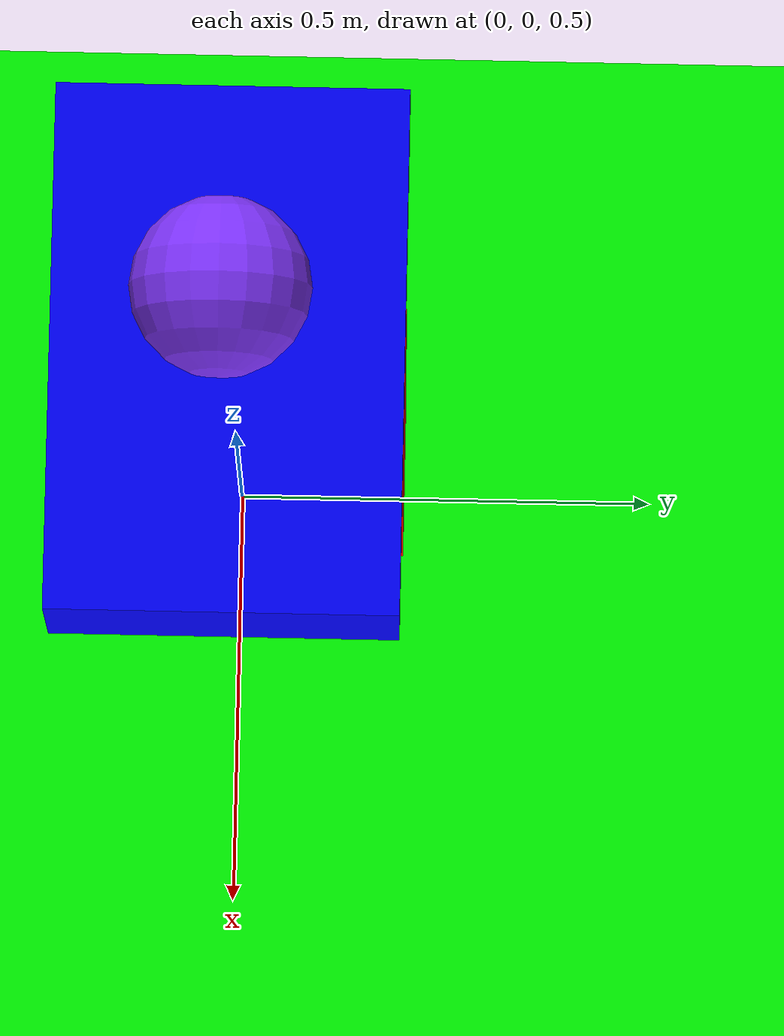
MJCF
<mujoco>
	<worldbody>
        <light diffuse=".5 .5 .5" pos="0 0 3" dir="0 0 -1"/>
		<geom type="plane" size="1 1 0.1" rgba="0 1 0 1"/>
		<body pos="0 0 1">
			<joint type="free"/>
			<geom type="box" size=".1 .2 .3" rgba="1 0 0 1"/>
		</body>
		<body pos="0 0 1.5" euler="0 90 0">
			<joint type="free"/>
			<geom type="box" size=".1 .2 .3" rgba="0 0 1 1"/>
		</body>
		<body pos="0 0 2" euler="0 90 0">
			<joint type="free"/>
			<geom type="sphere" size=".1" rgba="0.5 0.2 1 1"/>
		</body>
	</worldbody>
</mujoco>
